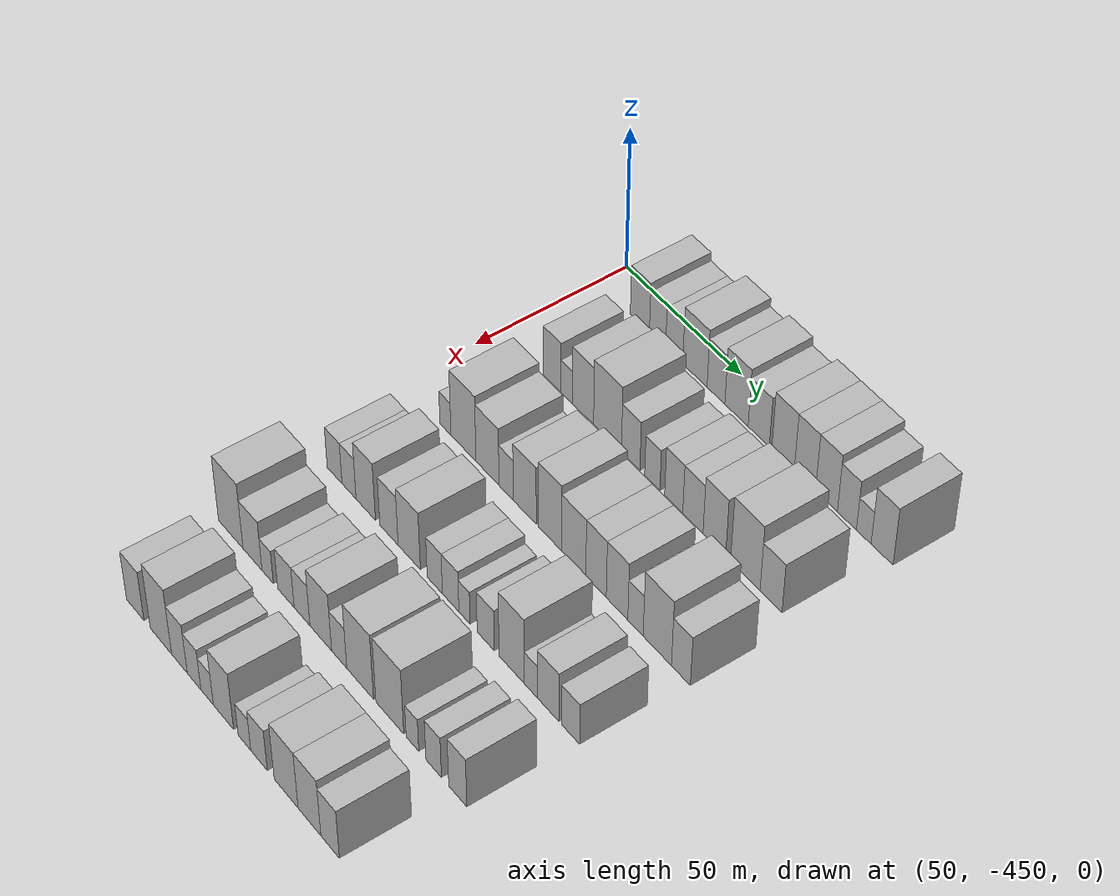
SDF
<sdf version="1.6">
 <world name="default">
  <model name="building_12">
   <static>1</static>
   <pose>50.0000 -431.0068 0 0.000000 0.000000 0.000000</pose>
   <link name="link">
    <pose>0 0 9.00 0 0 0</pose>
    <collision name="collision"><geometry><box><size>20.0000 8.4529 18.0000</size></box></geometry></collision>
    <visual name="visual">
     <cast_shadows>0</cast_shadows>
     <geometry><box><size>20.0000 8.4529 18.0000</size></box></geometry>
     <material>
      <script>
       <uri>model://HANNAS_wall/materials/scripts</uri>
       <uri>model://HANNAS_wall/materials/textures</uri>
       <name>vrc/HANNAS_wall</name>
      </script>
     </material>
    </visual>
   </link>
  </model>
  <model name="building_13">
   <static>1</static>
   <pose>50.0000 -423.2241 0 0.000000 0.000000 0.000000</pose>
   <link name="link">
    <pose>0 0 7.50 0 0 0</pose>
    <collision name="collision"><geometry><box><size>20.0000 7.1123 15.0000</size></box></geometry></collision>
    <visual name="visual">
     <cast_shadows>0</cast_shadows>
     <geometry><box><size>20.0000 7.1123 15.0000</size></box></geometry>
     <material>
      <script>
       <uri>model://HANNAS_wall/materials/scripts</uri>
       <uri>model://HANNAS_wall/materials/textures</uri>
       <name>vrc/HANNAS_wall</name>
      </script>
     </material>
    </visual>
   </link>
  </model>
  <model name="building_14">
   <static>1</static>
   <pose>50.0000 -415.9639 0 0.000000 0.000000 0.000000</pose>
   <link name="link">
    <pose>0 0 7.50 0 0 0</pose>
    <collision name="collision"><geometry><box><size>20.0000 7.4080 15.0000</size></box></geometry></collision>
    <visual name="visual">
     <cast_shadows>0</cast_shadows>
     <geometry><box><size>20.0000 7.4080 15.0000</size></box></geometry>
     <material>
      <script>
       <uri>model://HANNAS_wall/materials/scripts</uri>
       <uri>model://HANNAS_wall/materials/textures</uri>
       <name>vrc/HANNAS_wall</name>
      </script>
     </material>
    </visual>
   </link>
  </model>
  <model name="building_15">
   <static>1</static>
   <pose>50.0000 -407.0353 0 0.000000 0.000000 0.000000</pose>
   <link name="link">
    <pose>0 0 10.50 0 0 0</pose>
    <collision name="collision"><geometry><box><size>20.0000 10.4492 21.0000</size></box></geometry></collision>
    <visual name="visual">
     <cast_shadows>0</cast_shadows>
     <geometry><box><size>20.0000 10.4492 21.0000</size></box></geometry>
     <material>
      <script>
       <uri>model://HANNAS_wall/materials/scripts</uri>
       <uri>model://HANNAS_wall/materials/textures</uri>
       <name>vrc/HANNAS_wall</name>
      </script>
     </material>
    </visual>
   </link>
  </model>
  <model name="building_16">
   <static>1</static>
   <pose>50.0000 -398.0223 0 0.000000 0.000000 0.000000</pose>
   <link name="link">
    <pose>0 0 9.00 0 0 0</pose>
    <collision name="collision"><geometry><box><size>20.0000 7.5769 18.0000</size></box></geometry></collision>
    <visual name="visual">
     <cast_shadows>0</cast_shadows>
     <geometry><box><size>20.0000 7.5769 18.0000</size></box></geometry>
     <material>
      <script>
       <uri>model://HANNAS_wall/materials/scripts</uri>
       <uri>model://HANNAS_wall/materials/textures</uri>
       <name>vrc/HANNAS_wall</name>
      </script>
     </material>
    </visual>
   </link>
  </model>
  <model name="building_17">
   <static>1</static>
   <pose>50.0000 -389.3674 0 0.000000 0.000000 0.000000</pose>
   <link name="link">
    <pose>0 0 10.50 0 0 0</pose>
    <collision name="collision"><geometry><box><size>20.0000 9.7329 21.0000</size></box></geometry></collision>
    <visual name="visual">
     <cast_shadows>0</cast_shadows>
     <geometry><box><size>20.0000 9.7329 21.0000</size></box></geometry>
     <material>
      <script>
       <uri>model://HANNAS_wall/materials/scripts</uri>
       <uri>model://HANNAS_wall/materials/textures</uri>
       <name>vrc/HANNAS_wall</name>
      </script>
     </material>
    </visual>
   </link>
  </model>
  <model name="building_18">
   <static>1</static>
   <pose>50.0000 -380.1098 0 0.000000 0.000000 0.000000</pose>
   <link name="link">
    <pose>0 0 9.00 0 0 0</pose>
    <collision name="collision"><geometry><box><size>20.0000 8.7823 18.0000</size></box></geometry></collision>
    <visual name="visual">
     <cast_shadows>0</cast_shadows>
     <geometry><box><size>20.0000 8.7823 18.0000</size></box></geometry>
     <material>
      <script>
       <uri>model://HANNAS_wall/materials/scripts</uri>
       <uri>model://HANNAS_wall/materials/textures</uri>
       <name>vrc/HANNAS_wall</name>
      </script>
     </material>
    </visual>
   </link>
  </model>
  <model name="building_19">
   <static>1</static>
   <pose>50.0000 -370.1197 0 0.000000 0.000000 0.000000</pose>
   <link name="link">
    <pose>0 0 10.50 0 0 0</pose>
    <collision name="collision"><geometry><box><size>20.0000 9.1979 21.0000</size></box></geometry></collision>
    <visual name="visual">
     <cast_shadows>0</cast_shadows>
     <geometry><box><size>20.0000 9.1979 21.0000</size></box></geometry>
     <material>
      <script>
       <uri>model://HANNAS_wall/materials/scripts</uri>
       <uri>model://HANNAS_wall/materials/textures</uri>
       <name>vrc/HANNAS_wall</name>
      </script>
     </material>
    </visual>
   </link>
  </model>
  <model name="building_20">
   <static>1</static>
   <pose>50.0000 -361.2308 0 0.000000 0.000000 0.000000</pose>
   <link name="link">
    <pose>0 0 10.50 0 0 0</pose>
    <collision name="collision"><geometry><box><size>20.0000 8.5800 21.0000</size></box></geometry></collision>
    <visual name="visual">
     <cast_shadows>0</cast_shadows>
     <geometry><box><size>20.0000 8.5800 21.0000</size></box></geometry>
     <material>
      <script>
       <uri>model://HANNAS_wall/materials/scripts</uri>
       <uri>model://HANNAS_wall/materials/textures</uri>
       <name>vrc/HANNAS_wall</name>
      </script>
     </material>
    </visual>
   </link>
  </model>
  <model name="building_21">
   <static>1</static>
   <pose>50.0000 -352.5781 0 0.000000 0.000000 0.000000</pose>
   <link name="link">
    <pose>0 0 10.50 0 0 0</pose>
    <collision name="collision"><geometry><box><size>20.0000 8.7254 21.0000</size></box></geometry></collision>
    <visual name="visual">
     <cast_shadows>0</cast_shadows>
     <geometry><box><size>20.0000 8.7254 21.0000</size></box></geometry>
     <material>
      <script>
       <uri>model://HANNAS_wall/materials/scripts</uri>
       <uri>model://HANNAS_wall/materials/textures</uri>
       <name>vrc/HANNAS_wall</name>
      </script>
     </material>
    </visual>
   </link>
  </model>
  <model name="building_22">
   <static>1</static>
   <pose>50.0000 -344.4719 0 0.000000 0.000000 0.000000</pose>
   <link name="link">
    <pose>0 0 9.00 0 0 0</pose>
    <collision name="collision"><geometry><box><size>20.0000 7.4869 18.0000</size></box></geometry></collision>
    <visual name="visual">
     <cast_shadows>0</cast_shadows>
     <geometry><box><size>20.0000 7.4869 18.0000</size></box></geometry>
     <material>
      <script>
       <uri>model://HANNAS_wall/materials/scripts</uri>
       <uri>model://HANNAS_wall/materials/textures</uri>
       <name>vrc/HANNAS_wall</name>
      </script>
     </material>
    </visual>
   </link>
  </model>
  <model name="building_23">
   <static>1</static>
   <pose>50.0000 -337.8545 0 0.000000 0.000000 0.000000</pose>
   <link name="link">
    <pose>0 0 6.00 0 0 0</pose>
    <collision name="collision"><geometry><box><size>20.0000 5.7479 12.0000</size></box></geometry></collision>
    <visual name="visual">
     <cast_shadows>0</cast_shadows>
     <geometry><box><size>20.0000 5.7479 12.0000</size></box></geometry>
     <material>
      <script>
       <uri>model://HANNAS_wall/materials/scripts</uri>
       <uri>model://HANNAS_wall/materials/textures</uri>
       <name>vrc/HANNAS_wall</name>
      </script>
     </material>
    </visual>
   </link>
  </model>
  <model name="building_24">
   <static>1</static>
   <pose>50.0000 -330.7314 0 0.000000 0.000000 0.000000</pose>
   <link name="link">
    <pose>0 0 10.50 0 0 0</pose>
    <collision name="collision"><geometry><box><size>20.0000 8.4983 21.0000</size></box></geometry></collision>
    <visual name="visual">
     <cast_shadows>0</cast_shadows>
     <geometry><box><size>20.0000 8.4983 21.0000</size></box></geometry>
     <material>
      <script>
       <uri>model://HANNAS_wall/materials/scripts</uri>
       <uri>model://HANNAS_wall/materials/textures</uri>
       <name>vrc/HANNAS_wall</name>
      </script>
     </material>
    </visual>
   </link>
  </model>
  <model name="building_134">
   <static>1</static>
   <pose>82.0000 -426.6312 0 0.000000 0.000000 0.000000</pose>
   <link name="link">
    <pose>0 0 9.00 0 0 0</pose>
    <collision name="collision"><geometry><box><size>20.0000 7.8593 18.0000</size></box></geometry></collision>
    <visual name="visual">
     <cast_shadows>0</cast_shadows>
     <geometry><box><size>20.0000 7.8593 18.0000</size></box></geometry>
     <material>
      <script>
       <uri>model://HANNAS_wall/materials/scripts</uri>
       <uri>model://HANNAS_wall/materials/textures</uri>
       <name>vrc/HANNAS_wall</name>
      </script>
     </material>
    </visual>
   </link>
  </model>
  <model name="building_135">
   <static>1</static>
   <pose>82.0000 -420.2065 0 0.000000 0.000000 0.000000</pose>
   <link name="link">
    <pose>0 0 6.00 0 0 0</pose>
    <collision name="collision"><geometry><box><size>20.0000 4.9901 12.0000</size></box></geometry></collision>
    <visual name="visual">
     <cast_shadows>0</cast_shadows>
     <geometry><box><size>20.0000 4.9901 12.0000</size></box></geometry>
     <material>
      <script>
       <uri>model://HANNAS_wall/materials/scripts</uri>
       <uri>model://HANNAS_wall/materials/textures</uri>
       <name>vrc/HANNAS_wall</name>
      </script>
     </material>
    </visual>
   </link>
  </model>
  <model name="building_136">
   <static>1</static>
   <pose>82.0000 -413.0354 0 0.000000 0.000000 0.000000</pose>
   <link name="link">
    <pose>0 0 10.50 0 0 0</pose>
    <collision name="collision"><geometry><box><size>20.0000 9.3520 21.0000</size></box></geometry></collision>
    <visual name="visual">
     <cast_shadows>0</cast_shadows>
     <geometry><box><size>20.0000 9.3520 21.0000</size></box></geometry>
     <material>
      <script>
       <uri>model://HANNAS_wall/materials/scripts</uri>
       <uri>model://HANNAS_wall/materials/textures</uri>
       <name>vrc/HANNAS_wall</name>
      </script>
     </material>
    </visual>
   </link>
  </model>
  <model name="building_137">
   <static>1</static>
   <pose>82.0000 -402.3697 0 0.000000 0.000000 0.000000</pose>
   <link name="link">
    <pose>0 0 12.00 0 0 0</pose>
    <collision name="collision"><geometry><box><size>20.0000 11.9795 24.0000</size></box></geometry></collision>
    <visual name="visual">
     <cast_shadows>0</cast_shadows>
     <geometry><box><size>20.0000 11.9795 24.0000</size></box></geometry>
     <material>
      <script>
       <uri>model://HANNAS_wall/materials/scripts</uri>
       <uri>model://HANNAS_wall/materials/textures</uri>
       <name>vrc/HANNAS_wall</name>
      </script>
     </material>
    </visual>
   </link>
  </model>
  <model name="building_138">
   <static>1</static>
   <pose>82.0000 -392.4213 0 0.000000 0.000000 0.000000</pose>
   <link name="link">
    <pose>0 0 9.00 0 0 0</pose>
    <collision name="collision"><geometry><box><size>20.0000 7.9174 18.0000</size></box></geometry></collision>
    <visual name="visual">
     <cast_shadows>0</cast_shadows>
     <geometry><box><size>20.0000 7.9174 18.0000</size></box></geometry>
     <material>
      <script>
       <uri>model://HANNAS_wall/materials/scripts</uri>
       <uri>model://HANNAS_wall/materials/textures</uri>
       <name>vrc/HANNAS_wall</name>
      </script>
     </material>
    </visual>
   </link>
  </model>
  <model name="building_139">
   <static>1</static>
   <pose>82.0000 -383.2548 0 0.000000 0.000000 0.000000</pose>
   <link name="link">
    <pose>0 0 7.50 0 0 0</pose>
    <collision name="collision"><geometry><box><size>20.0000 6.4155 15.0000</size></box></geometry></collision>
    <visual name="visual">
     <cast_shadows>0</cast_shadows>
     <geometry><box><size>20.0000 6.4155 15.0000</size></box></geometry>
     <material>
      <script>
       <uri>model://HANNAS_wall/materials/scripts</uri>
       <uri>model://HANNAS_wall/materials/textures</uri>
       <name>vrc/HANNAS_wall</name>
      </script>
     </material>
    </visual>
   </link>
  </model>
  <model name="building_140">
   <static>1</static>
   <pose>82.0000 -374.2844 0 0.000000 0.000000 0.000000</pose>
   <link name="link">
    <pose>0 0 9.00 0 0 0</pose>
    <collision name="collision"><geometry><box><size>20.0000 7.5253 18.0000</size></box></geometry></collision>
    <visual name="visual">
     <cast_shadows>0</cast_shadows>
     <geometry><box><size>20.0000 7.5253 18.0000</size></box></geometry>
     <material>
      <script>
       <uri>model://HANNAS_wall/materials/scripts</uri>
       <uri>model://HANNAS_wall/materials/textures</uri>
       <name>vrc/HANNAS_wall</name>
      </script>
     </material>
    </visual>
   </link>
  </model>
  <model name="building_141">
   <static>1</static>
   <pose>82.0000 -366.3588 0 0.000000 0.000000 0.000000</pose>
   <link name="link">
    <pose>0 0 9.00 0 0 0</pose>
    <collision name="collision"><geometry><box><size>20.0000 8.3260 18.0000</size></box></geometry></collision>
    <visual name="visual">
     <cast_shadows>0</cast_shadows>
     <geometry><box><size>20.0000 8.3260 18.0000</size></box></geometry>
     <material>
      <script>
       <uri>model://HANNAS_wall/materials/scripts</uri>
       <uri>model://HANNAS_wall/materials/textures</uri>
       <name>vrc/HANNAS_wall</name>
      </script>
     </material>
    </visual>
   </link>
  </model>
  <model name="building_142">
   <static>1</static>
   <pose>82.0000 -357.5885 0 0.000000 0.000000 0.000000</pose>
   <link name="link">
    <pose>0 0 10.50 0 0 0</pose>
    <collision name="collision"><geometry><box><size>20.0000 9.2147 21.0000</size></box></geometry></collision>
    <visual name="visual">
     <cast_shadows>0</cast_shadows>
     <geometry><box><size>20.0000 9.2147 21.0000</size></box></geometry>
     <material>
      <script>
       <uri>model://HANNAS_wall/materials/scripts</uri>
       <uri>model://HANNAS_wall/materials/textures</uri>
       <name>vrc/HANNAS_wall</name>
      </script>
     </material>
    </visual>
   </link>
  </model>
  <model name="building_143">
   <static>1</static>
   <pose>82.0000 -345.1156 0 0.000000 0.000000 0.000000</pose>
   <link name="link">
    <pose>0 0 12.00 0 0 0</pose>
    <collision name="collision"><geometry><box><size>20.0000 11.7311 24.0000</size></box></geometry></collision>
    <visual name="visual">
     <cast_shadows>0</cast_shadows>
     <geometry><box><size>20.0000 11.7311 24.0000</size></box></geometry>
     <material>
      <script>
       <uri>model://HANNAS_wall/materials/scripts</uri>
       <uri>model://HANNAS_wall/materials/textures</uri>
       <name>vrc/HANNAS_wall</name>
      </script>
     </material>
    </visual>
   </link>
  </model>
  <model name="building_144">
   <static>1</static>
   <pose>82.0000 -334.9114 0 0.000000 0.000000 0.000000</pose>
   <link name="link">
    <pose>0 0 9.00 0 0 0</pose>
    <collision name="collision"><geometry><box><size>20.0000 8.6775 18.0000</size></box></geometry></collision>
    <visual name="visual">
     <cast_shadows>0</cast_shadows>
     <geometry><box><size>20.0000 8.6775 18.0000</size></box></geometry>
     <material>
      <script>
       <uri>model://HANNAS_wall/materials/scripts</uri>
       <uri>model://HANNAS_wall/materials/textures</uri>
       <name>vrc/HANNAS_wall</name>
      </script>
     </material>
    </visual>
   </link>
  </model>
  <model name="building_255">
   <static>1</static>
   <pose>114.0000 -429.3793 0 0.000000 0.000000 0.000000</pose>
   <link name="link">
    <pose>0 0 6.00 0 0 0</pose>
    <collision name="collision"><geometry><box><size>20.0000 4.9989 12.0000</size></box></geometry></collision>
    <visual name="visual">
     <cast_shadows>0</cast_shadows>
     <geometry><box><size>20.0000 4.9989 12.0000</size></box></geometry>
     <material>
      <script>
       <uri>model://HANNAS_wall/materials/scripts</uri>
       <uri>model://HANNAS_wall/materials/textures</uri>
       <name>vrc/HANNAS_wall</name>
      </script>
     </material>
    </visual>
   </link>
  </model>
  <model name="building_256">
   <static>1</static>
   <pose>114.0000 -421.2362 0 0.000000 0.000000 0.000000</pose>
   <link name="link">
    <pose>0 0 12.00 0 0 0</pose>
    <collision name="collision"><geometry><box><size>20.0000 11.2873 24.0000</size></box></geometry></collision>
    <visual name="visual">
     <cast_shadows>0</cast_shadows>
     <geometry><box><size>20.0000 11.2873 24.0000</size></box></geometry>
     <material>
      <script>
       <uri>model://HANNAS_wall/materials/scripts</uri>
       <uri>model://HANNAS_wall/materials/textures</uri>
       <name>vrc/HANNAS_wall</name>
      </script>
     </material>
    </visual>
   </link>
  </model>
  <model name="building_257">
   <static>1</static>
   <pose>114.0000 -410.4836 0 0.000000 0.000000 0.000000</pose>
   <link name="link">
    <pose>0 0 10.50 0 0 0</pose>
    <collision name="collision"><geometry><box><size>20.0000 10.2179 21.0000</size></box></geometry></collision>
    <visual name="visual">
     <cast_shadows>0</cast_shadows>
     <geometry><box><size>20.0000 10.2179 21.0000</size></box></geometry>
     <material>
      <script>
       <uri>model://HANNAS_wall/materials/scripts</uri>
       <uri>model://HANNAS_wall/materials/textures</uri>
       <name>vrc/HANNAS_wall</name>
      </script>
     </material>
    </visual>
   </link>
  </model>
  <model name="building_258">
   <static>1</static>
   <pose>114.0000 -402.2561 0 0.000000 0.000000 0.000000</pose>
   <link name="link">
    <pose>0 0 7.50 0 0 0</pose>
    <collision name="collision"><geometry><box><size>20.0000 6.2370 15.0000</size></box></geometry></collision>
    <visual name="visual">
     <cast_shadows>0</cast_shadows>
     <geometry><box><size>20.0000 6.2370 15.0000</size></box></geometry>
     <material>
      <script>
       <uri>model://HANNAS_wall/materials/scripts</uri>
       <uri>model://HANNAS_wall/materials/textures</uri>
       <name>vrc/HANNAS_wall</name>
      </script>
     </material>
    </visual>
   </link>
  </model>
  <model name="building_259">
   <static>1</static>
   <pose>114.0000 -394.1657 0 0.000000 0.000000 0.000000</pose>
   <link name="link">
    <pose>0 0 10.50 0 0 0</pose>
    <collision name="collision"><geometry><box><size>20.0000 9.9439 21.0000</size></box></geometry></collision>
    <visual name="visual">
     <cast_shadows>0</cast_shadows>
     <geometry><box><size>20.0000 9.9439 21.0000</size></box></geometry>
     <material>
      <script>
       <uri>model://HANNAS_wall/materials/scripts</uri>
       <uri>model://HANNAS_wall/materials/textures</uri>
       <name>vrc/HANNAS_wall</name>
      </script>
     </material>
    </visual>
   </link>
  </model>
  <model name="building_260">
   <static>1</static>
   <pose>114.0000 -383.3148 0 0.000000 0.000000 0.000000</pose>
   <link name="link">
    <pose>0 0 12.00 0 0 0</pose>
    <collision name="collision"><geometry><box><size>20.0000 9.7580 24.0000</size></box></geometry></collision>
    <visual name="visual">
     <cast_shadows>0</cast_shadows>
     <geometry><box><size>20.0000 9.7580 24.0000</size></box></geometry>
     <material>
      <script>
       <uri>model://HANNAS_wall/materials/scripts</uri>
       <uri>model://HANNAS_wall/materials/textures</uri>
       <name>vrc/HANNAS_wall</name>
      </script>
     </material>
    </visual>
   </link>
  </model>
  <model name="building_261">
   <static>1</static>
   <pose>114.0000 -373.3097 0 0.000000 0.000000 0.000000</pose>
   <link name="link">
    <pose>0 0 10.50 0 0 0</pose>
    <collision name="collision"><geometry><box><size>20.0000 10.2523 21.0000</size></box></geometry></collision>
    <visual name="visual">
     <cast_shadows>0</cast_shadows>
     <geometry><box><size>20.0000 10.2523 21.0000</size></box></geometry>
     <material>
      <script>
       <uri>model://HANNAS_wall/materials/scripts</uri>
       <uri>model://HANNAS_wall/materials/textures</uri>
       <name>vrc/HANNAS_wall</name>
      </script>
     </material>
    </visual>
   </link>
  </model>
  <model name="building_262">
   <static>1</static>
   <pose>114.0000 -363.9384 0 0.000000 0.000000 0.000000</pose>
   <link name="link">
    <pose>0 0 10.50 0 0 0</pose>
    <collision name="collision"><geometry><box><size>20.0000 8.4902 21.0000</size></box></geometry></collision>
    <visual name="visual">
     <cast_shadows>0</cast_shadows>
     <geometry><box><size>20.0000 8.4902 21.0000</size></box></geometry>
     <material>
      <script>
       <uri>model://HANNAS_wall/materials/scripts</uri>
       <uri>model://HANNAS_wall/materials/textures</uri>
       <name>vrc/HANNAS_wall</name>
      </script>
     </material>
    </visual>
   </link>
  </model>
  <model name="building_263">
   <static>1</static>
   <pose>114.0000 -355.2793 0 0.000000 0.000000 0.000000</pose>
   <link name="link">
    <pose>0 0 10.50 0 0 0</pose>
    <collision name="collision"><geometry><box><size>20.0000 8.8281 21.0000</size></box></geometry></collision>
    <visual name="visual">
     <cast_shadows>0</cast_shadows>
     <geometry><box><size>20.0000 8.8281 21.0000</size></box></geometry>
     <material>
      <script>
       <uri>model://HANNAS_wall/materials/scripts</uri>
       <uri>model://HANNAS_wall/materials/textures</uri>
       <name>vrc/HANNAS_wall</name>
      </script>
     </material>
    </visual>
   </link>
  </model>
  <model name="building_264">
   <static>1</static>
   <pose>114.0000 -347.7420 0 0.000000 0.000000 0.000000</pose>
   <link name="link">
    <pose>0 0 7.50 0 0 0</pose>
    <collision name="collision"><geometry><box><size>20.0000 6.2464 15.0000</size></box></geometry></collision>
    <visual name="visual">
     <cast_shadows>0</cast_shadows>
     <geometry><box><size>20.0000 6.2464 15.0000</size></box></geometry>
     <material>
      <script>
       <uri>model://HANNAS_wall/materials/scripts</uri>
       <uri>model://HANNAS_wall/materials/textures</uri>
       <name>vrc/HANNAS_wall</name>
      </script>
     </material>
    </visual>
   </link>
  </model>
  <model name="building_265">
   <static>1</static>
   <pose>114.0000 -338.9480 0 0.000000 0.000000 0.000000</pose>
   <link name="link">
    <pose>0 0 12.00 0 0 0</pose>
    <collision name="collision"><geometry><box><size>20.0000 11.3417 24.0000</size></box></geometry></collision>
    <visual name="visual">
     <cast_shadows>0</cast_shadows>
     <geometry><box><size>20.0000 11.3417 24.0000</size></box></geometry>
     <material>
      <script>
       <uri>model://HANNAS_wall/materials/scripts</uri>
       <uri>model://HANNAS_wall/materials/textures</uri>
       <name>vrc/HANNAS_wall</name>
      </script>
     </material>
    </visual>
   </link>
  </model>
  <model name="building_266">
   <static>1</static>
   <pose>114.0000 -329.5264 0 0.000000 0.000000 0.000000</pose>
   <link name="link">
    <pose>0 0 9.00 0 0 0</pose>
    <collision name="collision"><geometry><box><size>20.0000 7.5016 18.0000</size></box></geometry></collision>
    <visual name="visual">
     <cast_shadows>0</cast_shadows>
     <geometry><box><size>20.0000 7.5016 18.0000</size></box></geometry>
     <material>
      <script>
       <uri>model://HANNAS_wall/materials/scripts</uri>
       <uri>model://HANNAS_wall/materials/textures</uri>
       <name>vrc/HANNAS_wall</name>
      </script>
     </material>
    </visual>
   </link>
  </model>
  <model name="building_376">
   <static>1</static>
   <pose>146.0000 -432.6583 0 0.000000 0.000000 0.000000</pose>
   <link name="link">
    <pose>0 0 7.50 0 0 0</pose>
    <collision name="collision"><geometry><box><size>20.0000 6.8668 15.0000</size></box></geometry></collision>
    <visual name="visual">
     <cast_shadows>0</cast_shadows>
     <geometry><box><size>20.0000 6.8668 15.0000</size></box></geometry>
     <material>
      <script>
       <uri>model://HANNAS_wall/materials/scripts</uri>
       <uri>model://HANNAS_wall/materials/textures</uri>
       <name>vrc/HANNAS_wall</name>
      </script>
     </material>
    </visual>
   </link>
  </model>
  <model name="building_377">
   <static>1</static>
   <pose>146.0000 -425.9941 0 0.000000 0.000000 0.000000</pose>
   <link name="link">
    <pose>0 0 7.50 0 0 0</pose>
    <collision name="collision"><geometry><box><size>20.0000 6.4616 15.0000</size></box></geometry></collision>
    <visual name="visual">
     <cast_shadows>0</cast_shadows>
     <geometry><box><size>20.0000 6.4616 15.0000</size></box></geometry>
     <material>
      <script>
       <uri>model://HANNAS_wall/materials/scripts</uri>
       <uri>model://HANNAS_wall/materials/textures</uri>
       <name>vrc/HANNAS_wall</name>
      </script>
     </material>
    </visual>
   </link>
  </model>
  <model name="building_378">
   <static>1</static>
   <pose>146.0000 -418.3474 0 0.000000 0.000000 0.000000</pose>
   <link name="link">
    <pose>0 0 10.50 0 0 0</pose>
    <collision name="collision"><geometry><box><size>20.0000 8.8317 21.0000</size></box></geometry></collision>
    <visual name="visual">
     <cast_shadows>0</cast_shadows>
     <geometry><box><size>20.0000 8.8317 21.0000</size></box></geometry>
     <material>
      <script>
       <uri>model://HANNAS_wall/materials/scripts</uri>
       <uri>model://HANNAS_wall/materials/textures</uri>
       <name>vrc/HANNAS_wall</name>
      </script>
     </material>
    </visual>
   </link>
  </model>
  <model name="building_379">
   <static>1</static>
   <pose>146.0000 -407.8342 0 0.000000 0.000000 0.000000</pose>
   <link name="link">
    <pose>0 0 9.00 0 0 0</pose>
    <collision name="collision"><geometry><box><size>20.0000 8.1948 18.0000</size></box></geometry></collision>
    <visual name="visual">
     <cast_shadows>0</cast_shadows>
     <geometry><box><size>20.0000 8.1948 18.0000</size></box></geometry>
     <material>
      <script>
       <uri>model://HANNAS_wall/materials/scripts</uri>
       <uri>model://HANNAS_wall/materials/textures</uri>
       <name>vrc/HANNAS_wall</name>
      </script>
     </material>
    </visual>
   </link>
  </model>
  <model name="building_380">
   <static>1</static>
   <pose>146.0000 -398.8024 0 0.000000 0.000000 0.000000</pose>
   <link name="link">
    <pose>0 0 10.50 0 0 0</pose>
    <collision name="collision"><geometry><box><size>20.0000 9.8688 21.0000</size></box></geometry></collision>
    <visual name="visual">
     <cast_shadows>0</cast_shadows>
     <geometry><box><size>20.0000 9.8688 21.0000</size></box></geometry>
     <material>
      <script>
       <uri>model://HANNAS_wall/materials/scripts</uri>
       <uri>model://HANNAS_wall/materials/textures</uri>
       <name>vrc/HANNAS_wall</name>
      </script>
     </material>
    </visual>
   </link>
  </model>
  <model name="building_381">
   <static>1</static>
   <pose>146.0000 -387.5447 0 0.000000 0.000000 0.000000</pose>
   <link name="link">
    <pose>0 0 7.50 0 0 0</pose>
    <collision name="collision"><geometry><box><size>20.0000 6.6465 15.0000</size></box></geometry></collision>
    <visual name="visual">
     <cast_shadows>0</cast_shadows>
     <geometry><box><size>20.0000 6.6465 15.0000</size></box></geometry>
     <material>
      <script>
       <uri>model://HANNAS_wall/materials/scripts</uri>
       <uri>model://HANNAS_wall/materials/textures</uri>
       <name>vrc/HANNAS_wall</name>
      </script>
     </material>
    </visual>
   </link>
  </model>
  <model name="building_382">
   <static>1</static>
   <pose>146.0000 -380.6749 0 0.000000 0.000000 0.000000</pose>
   <link name="link">
    <pose>0 0 7.50 0 0 0</pose>
    <collision name="collision"><geometry><box><size>20.0000 7.0933 15.0000</size></box></geometry></collision>
    <visual name="visual">
     <cast_shadows>0</cast_shadows>
     <geometry><box><size>20.0000 7.0933 15.0000</size></box></geometry>
     <material>
      <script>
       <uri>model://HANNAS_wall/materials/scripts</uri>
       <uri>model://HANNAS_wall/materials/textures</uri>
       <name>vrc/HANNAS_wall</name>
      </script>
     </material>
    </visual>
   </link>
  </model>
  <model name="building_383">
   <static>1</static>
   <pose>146.0000 -374.7231 0 0.000000 0.000000 0.000000</pose>
   <link name="link">
    <pose>0 0 6.00 0 0 0</pose>
    <collision name="collision"><geometry><box><size>20.0000 4.8103 12.0000</size></box></geometry></collision>
    <visual name="visual">
     <cast_shadows>0</cast_shadows>
     <geometry><box><size>20.0000 4.8103 12.0000</size></box></geometry>
     <material>
      <script>
       <uri>model://HANNAS_wall/materials/scripts</uri>
       <uri>model://HANNAS_wall/materials/textures</uri>
       <name>vrc/HANNAS_wall</name>
      </script>
     </material>
    </visual>
   </link>
  </model>
  <model name="building_384">
   <static>1</static>
   <pose>146.0000 -365.6825 0 0.000000 0.000000 0.000000</pose>
   <link name="link">
    <pose>0 0 7.50 0 0 0</pose>
    <collision name="collision"><geometry><box><size>20.0000 7.2709 15.0000</size></box></geometry></collision>
    <visual name="visual">
     <cast_shadows>0</cast_shadows>
     <geometry><box><size>20.0000 7.2709 15.0000</size></box></geometry>
     <material>
      <script>
       <uri>model://HANNAS_wall/materials/scripts</uri>
       <uri>model://HANNAS_wall/materials/textures</uri>
       <name>vrc/HANNAS_wall</name>
      </script>
     </material>
    </visual>
   </link>
  </model>
  <model name="building_385">
   <static>1</static>
   <pose>146.0000 -354.8077 0 0.000000 0.000000 0.000000</pose>
   <link name="link">
    <pose>0 0 12.00 0 0 0</pose>
    <collision name="collision"><geometry><box><size>20.0000 10.4786 24.0000</size></box></geometry></collision>
    <visual name="visual">
     <cast_shadows>0</cast_shadows>
     <geometry><box><size>20.0000 10.4786 24.0000</size></box></geometry>
     <material>
      <script>
       <uri>model://HANNAS_wall/materials/scripts</uri>
       <uri>model://HANNAS_wall/materials/textures</uri>
       <name>vrc/HANNAS_wall</name>
      </script>
     </material>
    </visual>
   </link>
  </model>
  <model name="building_386">
   <static>1</static>
   <pose>146.0000 -346.9153 0 0.000000 0.000000 0.000000</pose>
   <link name="link">
    <pose>0 0 6.00 0 0 0</pose>
    <collision name="collision"><geometry><box><size>20.0000 5.3063 12.0000</size></box></geometry></collision>
    <visual name="visual">
     <cast_shadows>0</cast_shadows>
     <geometry><box><size>20.0000 5.3063 12.0000</size></box></geometry>
     <material>
      <script>
       <uri>model://HANNAS_wall/materials/scripts</uri>
       <uri>model://HANNAS_wall/materials/textures</uri>
       <name>vrc/HANNAS_wall</name>
      </script>
     </material>
    </visual>
   </link>
  </model>
  <model name="building_387">
   <static>1</static>
   <pose>146.0000 -339.8534 0 0.000000 0.000000 0.000000</pose>
   <link name="link">
    <pose>0 0 9.00 0 0 0</pose>
    <collision name="collision"><geometry><box><size>20.0000 8.8175 18.0000</size></box></geometry></collision>
    <visual name="visual">
     <cast_shadows>0</cast_shadows>
     <geometry><box><size>20.0000 8.8175 18.0000</size></box></geometry>
     <material>
      <script>
       <uri>model://HANNAS_wall/materials/scripts</uri>
       <uri>model://HANNAS_wall/materials/textures</uri>
       <name>vrc/HANNAS_wall</name>
      </script>
     </material>
    </visual>
   </link>
  </model>
  <model name="building_388">
   <static>1</static>
   <pose>146.0000 -330.7638 0 0.000000 0.000000 0.000000</pose>
   <link name="link">
    <pose>0 0 7.50 0 0 0</pose>
    <collision name="collision"><geometry><box><size>20.0000 7.3617 15.0000</size></box></geometry></collision>
    <visual name="visual">
     <cast_shadows>0</cast_shadows>
     <geometry><box><size>20.0000 7.3617 15.0000</size></box></geometry>
     <material>
      <script>
       <uri>model://HANNAS_wall/materials/scripts</uri>
       <uri>model://HANNAS_wall/materials/textures</uri>
       <name>vrc/HANNAS_wall</name>
      </script>
     </material>
    </visual>
   </link>
  </model>
  <model name="building_492">
   <static>1</static>
   <pose>178.0000 -431.1976 0 0.000000 0.000000 0.000000</pose>
   <link name="link">
    <pose>0 0 12.00 0 0 0</pose>
    <collision name="collision"><geometry><box><size>20.0000 11.5684 24.0000</size></box></geometry></collision>
    <visual name="visual">
     <cast_shadows>0</cast_shadows>
     <geometry><box><size>20.0000 11.5684 24.0000</size></box></geometry>
     <material>
      <script>
       <uri>model://HANNAS_wall/materials/scripts</uri>
       <uri>model://HANNAS_wall/materials/textures</uri>
       <name>vrc/HANNAS_wall</name>
      </script>
     </material>
    </visual>
   </link>
  </model>
  <model name="building_493">
   <static>1</static>
   <pose>178.0000 -420.9982 0 0.000000 0.000000 0.000000</pose>
   <link name="link">
    <pose>0 0 9.00 0 0 0</pose>
    <collision name="collision"><geometry><box><size>20.0000 8.8305 18.0000</size></box></geometry></collision>
    <visual name="visual">
     <cast_shadows>0</cast_shadows>
     <geometry><box><size>20.0000 8.8305 18.0000</size></box></geometry>
     <material>
      <script>
       <uri>model://HANNAS_wall/materials/scripts</uri>
       <uri>model://HANNAS_wall/materials/textures</uri>
       <name>vrc/HANNAS_wall</name>
      </script>
     </material>
    </visual>
   </link>
  </model>
  <model name="building_494">
   <static>1</static>
   <pose>178.0000 -413.9627 0 0.000000 0.000000 0.000000</pose>
   <link name="link">
    <pose>0 0 6.00 0 0 0</pose>
    <collision name="collision"><geometry><box><size>20.0000 5.2405 12.0000</size></box></geometry></collision>
    <visual name="visual">
     <cast_shadows>0</cast_shadows>
     <geometry><box><size>20.0000 5.2405 12.0000</size></box></geometry>
     <material>
      <script>
       <uri>model://HANNAS_wall/materials/scripts</uri>
       <uri>model://HANNAS_wall/materials/textures</uri>
       <name>vrc/HANNAS_wall</name>
      </script>
     </material>
    </visual>
   </link>
  </model>
  <model name="building_495">
   <static>1</static>
   <pose>178.0000 -405.6006 0 0.000000 0.000000 0.000000</pose>
   <link name="link">
    <pose>0 0 7.50 0 0 0</pose>
    <collision name="collision"><geometry><box><size>20.0000 7.4838 15.0000</size></box></geometry></collision>
    <visual name="visual">
     <cast_shadows>0</cast_shadows>
     <geometry><box><size>20.0000 7.4838 15.0000</size></box></geometry>
     <material>
      <script>
       <uri>model://HANNAS_wall/materials/scripts</uri>
       <uri>model://HANNAS_wall/materials/textures</uri>
       <name>vrc/HANNAS_wall</name>
      </script>
     </material>
    </visual>
   </link>
  </model>
  <model name="building_496">
   <static>1</static>
   <pose>178.0000 -398.2935 0 0.000000 0.000000 0.000000</pose>
   <link name="link">
    <pose>0 0 7.50 0 0 0</pose>
    <collision name="collision"><geometry><box><size>20.0000 7.1303 15.0000</size></box></geometry></collision>
    <visual name="visual">
     <cast_shadows>0</cast_shadows>
     <geometry><box><size>20.0000 7.1303 15.0000</size></box></geometry>
     <material>
      <script>
       <uri>model://HANNAS_wall/materials/scripts</uri>
       <uri>model://HANNAS_wall/materials/textures</uri>
       <name>vrc/HANNAS_wall</name>
      </script>
     </material>
    </visual>
   </link>
  </model>
  <model name="building_497">
   <static>1</static>
   <pose>178.0000 -389.9038 0 0.000000 0.000000 0.000000</pose>
   <link name="link">
    <pose>0 0 10.50 0 0 0</pose>
    <collision name="collision"><geometry><box><size>20.0000 9.6491 21.0000</size></box></geometry></collision>
    <visual name="visual">
     <cast_shadows>0</cast_shadows>
     <geometry><box><size>20.0000 9.6491 21.0000</size></box></geometry>
     <material>
      <script>
       <uri>model://HANNAS_wall/materials/scripts</uri>
       <uri>model://HANNAS_wall/materials/textures</uri>
       <name>vrc/HANNAS_wall</name>
      </script>
     </material>
    </visual>
   </link>
  </model>
  <model name="building_498">
   <static>1</static>
   <pose>178.0000 -381.7464 0 0.000000 0.000000 0.000000</pose>
   <link name="link">
    <pose>0 0 7.50 0 0 0</pose>
    <collision name="collision"><geometry><box><size>20.0000 6.6655 15.0000</size></box></geometry></collision>
    <visual name="visual">
     <cast_shadows>0</cast_shadows>
     <geometry><box><size>20.0000 6.6655 15.0000</size></box></geometry>
     <material>
      <script>
       <uri>model://HANNAS_wall/materials/scripts</uri>
       <uri>model://HANNAS_wall/materials/textures</uri>
       <name>vrc/HANNAS_wall</name>
      </script>
     </material>
    </visual>
   </link>
  </model>
  <model name="building_499">
   <static>1</static>
   <pose>178.0000 -372.6000 0 0.000000 0.000000 0.000000</pose>
   <link name="link">
    <pose>0 0 12.00 0 0 0</pose>
    <collision name="collision"><geometry><box><size>20.0000 11.6273 24.0000</size></box></geometry></collision>
    <visual name="visual">
     <cast_shadows>0</cast_shadows>
     <geometry><box><size>20.0000 11.6273 24.0000</size></box></geometry>
     <material>
      <script>
       <uri>model://HANNAS_wall/materials/scripts</uri>
       <uri>model://HANNAS_wall/materials/textures</uri>
       <name>vrc/HANNAS_wall</name>
      </script>
     </material>
    </visual>
   </link>
  </model>
  <model name="building_500">
   <static>1</static>
   <pose>178.0000 -359.8364 0 0.000000 0.000000 0.000000</pose>
   <link name="link">
    <pose>0 0 12.00 0 0 0</pose>
    <collision name="collision"><geometry><box><size>20.0000 11.9000 24.0000</size></box></geometry></collision>
    <visual name="visual">
     <cast_shadows>0</cast_shadows>
     <geometry><box><size>20.0000 11.9000 24.0000</size></box></geometry>
     <material>
      <script>
       <uri>model://HANNAS_wall/materials/scripts</uri>
       <uri>model://HANNAS_wall/materials/textures</uri>
       <name>vrc/HANNAS_wall</name>
      </script>
     </material>
    </visual>
   </link>
  </model>
  <model name="building_501">
   <static>1</static>
   <pose>178.0000 -350.2346 0 0.000000 0.000000 0.000000</pose>
   <link name="link">
    <pose>0 0 6.00 0 0 0</pose>
    <collision name="collision"><geometry><box><size>20.0000 5.3035 12.0000</size></box></geometry></collision>
    <visual name="visual">
     <cast_shadows>0</cast_shadows>
     <geometry><box><size>20.0000 5.3035 12.0000</size></box></geometry>
     <material>
      <script>
       <uri>model://HANNAS_wall/materials/scripts</uri>
       <uri>model://HANNAS_wall/materials/textures</uri>
       <name>vrc/HANNAS_wall</name>
      </script>
     </material>
    </visual>
   </link>
  </model>
  <model name="building_502">
   <static>1</static>
   <pose>178.0000 -341.3601 0 0.000000 0.000000 0.000000</pose>
   <link name="link">
    <pose>0 0 7.50 0 0 0</pose>
    <collision name="collision"><geometry><box><size>20.0000 6.4455 15.0000</size></box></geometry></collision>
    <visual name="visual">
     <cast_shadows>0</cast_shadows>
     <geometry><box><size>20.0000 6.4455 15.0000</size></box></geometry>
     <material>
      <script>
       <uri>model://HANNAS_wall/materials/scripts</uri>
       <uri>model://HANNAS_wall/materials/textures</uri>
       <name>vrc/HANNAS_wall</name>
      </script>
     </material>
    </visual>
   </link>
  </model>
  <model name="building_503">
   <static>1</static>
   <pose>178.0000 -331.4278 0 0.000000 0.000000 0.000000</pose>
   <link name="link">
    <pose>0 0 9.00 0 0 0</pose>
    <collision name="collision"><geometry><box><size>20.0000 7.4192 18.0000</size></box></geometry></collision>
    <visual name="visual">
     <cast_shadows>0</cast_shadows>
     <geometry><box><size>20.0000 7.4192 18.0000</size></box></geometry>
     <material>
      <script>
       <uri>model://HANNAS_wall/materials/scripts</uri>
       <uri>model://HANNAS_wall/materials/textures</uri>
       <name>vrc/HANNAS_wall</name>
      </script>
     </material>
    </visual>
   </link>
  </model>
  <model name="building_614">
   <static>1</static>
   <pose>210.0000 -424.0009 0 0.000000 0.000000 0.000000</pose>
   <link name="link">
    <pose>0 0 9.00 0 0 0</pose>
    <collision name="collision"><geometry><box><size>20.0000 8.2718 18.0000</size></box></geometry></collision>
    <visual name="visual">
     <cast_shadows>0</cast_shadows>
     <geometry><box><size>20.0000 8.2718 18.0000</size></box></geometry>
     <material>
      <script>
       <uri>model://HANNAS_wall/materials/scripts</uri>
       <uri>model://HANNAS_wall/materials/textures</uri>
       <name>vrc/HANNAS_wall</name>
      </script>
     </material>
    </visual>
   </link>
  </model>
  <model name="building_615">
   <static>1</static>
   <pose>210.0000 -411.8580 0 0.000000 0.000000 0.000000</pose>
   <link name="link">
    <pose>0 0 12.00 0 0 0</pose>
    <collision name="collision"><geometry><box><size>20.0000 10.0140 24.0000</size></box></geometry></collision>
    <visual name="visual">
     <cast_shadows>0</cast_shadows>
     <geometry><box><size>20.0000 10.0140 24.0000</size></box></geometry>
     <material>
      <script>
       <uri>model://HANNAS_wall/materials/scripts</uri>
       <uri>model://HANNAS_wall/materials/textures</uri>
       <name>vrc/HANNAS_wall</name>
      </script>
     </material>
    </visual>
   </link>
  </model>
  <model name="building_616">
   <static>1</static>
   <pose>210.0000 -403.2348 0 0.000000 0.000000 0.000000</pose>
   <link name="link">
    <pose>0 0 9.00 0 0 0</pose>
    <collision name="collision"><geometry><box><size>20.0000 7.2324 18.0000</size></box></geometry></collision>
    <visual name="visual">
     <cast_shadows>0</cast_shadows>
     <geometry><box><size>20.0000 7.2324 18.0000</size></box></geometry>
     <material>
      <script>
       <uri>model://HANNAS_wall/materials/scripts</uri>
       <uri>model://HANNAS_wall/materials/textures</uri>
       <name>vrc/HANNAS_wall</name>
      </script>
     </material>
    </visual>
   </link>
  </model>
  <model name="building_617">
   <static>1</static>
   <pose>210.0000 -396.4723 0 0.000000 0.000000 0.000000</pose>
   <link name="link">
    <pose>0 0 7.50 0 0 0</pose>
    <collision name="collision"><geometry><box><size>20.0000 6.2926 15.0000</size></box></geometry></collision>
    <visual name="visual">
     <cast_shadows>0</cast_shadows>
     <geometry><box><size>20.0000 6.2926 15.0000</size></box></geometry>
     <material>
      <script>
       <uri>model://HANNAS_wall/materials/scripts</uri>
       <uri>model://HANNAS_wall/materials/textures</uri>
       <name>vrc/HANNAS_wall</name>
      </script>
     </material>
    </visual>
   </link>
  </model>
  <model name="building_618">
   <static>1</static>
   <pose>210.0000 -390.4961 0 0.000000 0.000000 0.000000</pose>
   <link name="link">
    <pose>0 0 6.00 0 0 0</pose>
    <collision name="collision"><geometry><box><size>20.0000 5.6599 12.0000</size></box></geometry></collision>
    <visual name="visual">
     <cast_shadows>0</cast_shadows>
     <geometry><box><size>20.0000 5.6599 12.0000</size></box></geometry>
     <material>
      <script>
       <uri>model://HANNAS_wall/materials/scripts</uri>
       <uri>model://HANNAS_wall/materials/textures</uri>
       <name>vrc/HANNAS_wall</name>
      </script>
     </material>
    </visual>
   </link>
  </model>
  <model name="building_619">
   <static>1</static>
   <pose>210.0000 -383.1146 0 0.000000 0.000000 0.000000</pose>
   <link name="link">
    <pose>0 0 10.50 0 0 0</pose>
    <collision name="collision"><geometry><box><size>20.0000 9.1030 21.0000</size></box></geometry></collision>
    <visual name="visual">
     <cast_shadows>0</cast_shadows>
     <geometry><box><size>20.0000 9.1030 21.0000</size></box></geometry>
     <material>
      <script>
       <uri>model://HANNAS_wall/materials/scripts</uri>
       <uri>model://HANNAS_wall/materials/textures</uri>
       <name>vrc/HANNAS_wall</name>
      </script>
     </material>
    </visual>
   </link>
  </model>
  <model name="building_620">
   <static>1</static>
   <pose>210.0000 -373.7451 0 0.000000 0.000000 0.000000</pose>
   <link name="link">
    <pose>0 0 6.00 0 0 0</pose>
    <collision name="collision"><geometry><box><size>20.0000 5.6360 12.0000</size></box></geometry></collision>
    <visual name="visual">
     <cast_shadows>0</cast_shadows>
     <geometry><box><size>20.0000 5.6360 12.0000</size></box></geometry>
     <material>
      <script>
       <uri>model://HANNAS_wall/materials/scripts</uri>
       <uri>model://HANNAS_wall/materials/textures</uri>
       <name>vrc/HANNAS_wall</name>
      </script>
     </material>
    </visual>
   </link>
  </model>
  <model name="building_621">
   <static>1</static>
   <pose>210.0000 -367.3059 0 0.000000 0.000000 0.000000</pose>
   <link name="link">
    <pose>0 0 7.50 0 0 0</pose>
    <collision name="collision"><geometry><box><size>20.0000 7.2423 15.0000</size></box></geometry></collision>
    <visual name="visual">
     <cast_shadows>0</cast_shadows>
     <geometry><box><size>20.0000 7.2423 15.0000</size></box></geometry>
     <material>
      <script>
       <uri>model://HANNAS_wall/materials/scripts</uri>
       <uri>model://HANNAS_wall/materials/textures</uri>
       <name>vrc/HANNAS_wall</name>
      </script>
     </material>
    </visual>
   </link>
  </model>
  <model name="building_622">
   <static>1</static>
   <pose>210.0000 -355.5252 0 0.000000 0.000000 0.000000</pose>
   <link name="link">
    <pose>0 0 10.50 0 0 0</pose>
    <collision name="collision"><geometry><box><size>20.0000 10.3191 21.0000</size></box></geometry></collision>
    <visual name="visual">
     <cast_shadows>0</cast_shadows>
     <geometry><box><size>20.0000 10.3191 21.0000</size></box></geometry>
     <material>
      <script>
       <uri>model://HANNAS_wall/materials/scripts</uri>
       <uri>model://HANNAS_wall/materials/textures</uri>
       <name>vrc/HANNAS_wall</name>
      </script>
     </material>
    </visual>
   </link>
  </model>
  <model name="building_623">
   <static>1</static>
   <pose>210.0000 -345.5157 0 0.000000 0.000000 0.000000</pose>
   <link name="link">
    <pose>0 0 10.50 0 0 0</pose>
    <collision name="collision"><geometry><box><size>20.0000 9.6999 21.0000</size></box></geometry></collision>
    <visual name="visual">
     <cast_shadows>0</cast_shadows>
     <geometry><box><size>20.0000 9.6999 21.0000</size></box></geometry>
     <material>
      <script>
       <uri>model://HANNAS_wall/materials/scripts</uri>
       <uri>model://HANNAS_wall/materials/textures</uri>
       <name>vrc/HANNAS_wall</name>
      </script>
     </material>
    </visual>
   </link>
  </model>
  <model name="building_624">
   <static>1</static>
   <pose>210.0000 -336.7855 0 0.000000 0.000000 0.000000</pose>
   <link name="link">
    <pose>0 0 9.00 0 0 0</pose>
    <collision name="collision"><geometry><box><size>20.0000 7.7605 18.0000</size></box></geometry></collision>
    <visual name="visual">
     <cast_shadows>0</cast_shadows>
     <geometry><box><size>20.0000 7.7605 18.0000</size></box></geometry>
     <material>
      <script>
       <uri>model://HANNAS_wall/materials/scripts</uri>
       <uri>model://HANNAS_wall/materials/textures</uri>
       <name>vrc/HANNAS_wall</name>
      </script>
     </material>
    </visual>
   </link>
  </model>
 </world>
</sdf>
